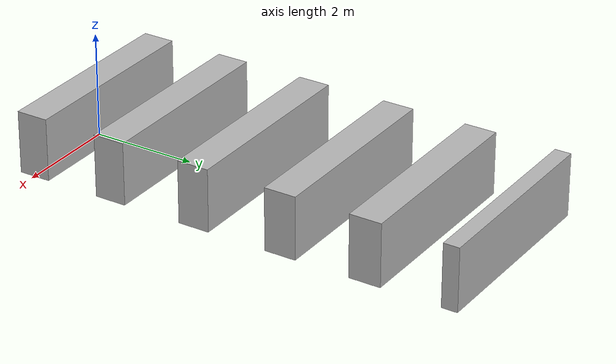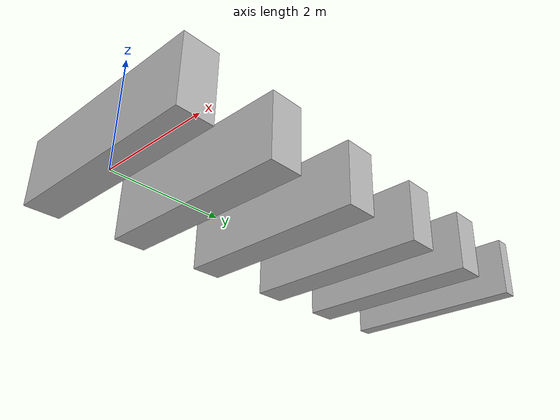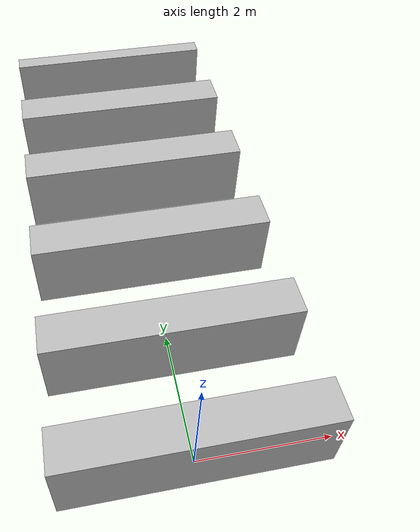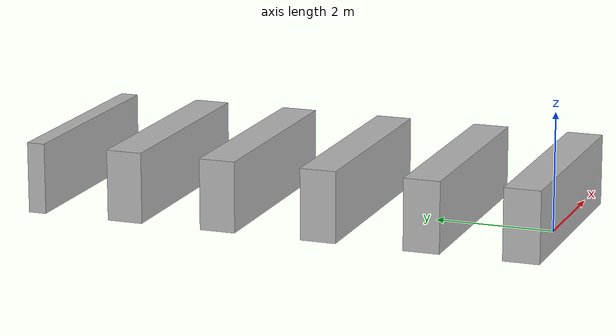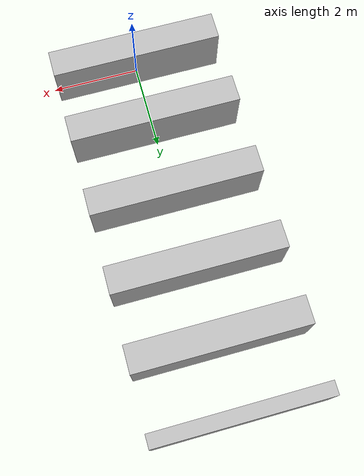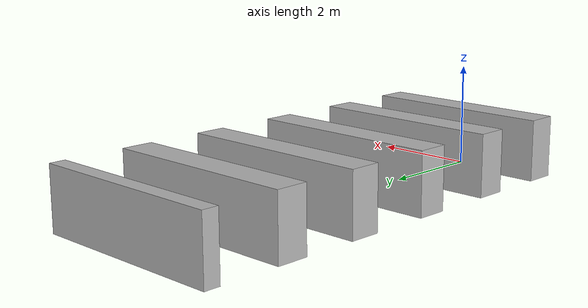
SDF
<?xml version="1.0" ?>
<sdf version="1.6">
  <model name="tue.library/journals">
    <link name="1">
      <collision name="1">
        <geometry>
          <box>
            <size>3.82 0.61 1.2</size>
          </box>
        </geometry>
        <name>1</name>
      </collision>
      <visual name="1">
        <geometry>
          <box>
            <size>3.82 0.61 1.2</size>
          </box>
        </geometry>
        <name>1</name>
      </visual>
      <pose>0 0 0.6 0 0 0</pose>
      <name>1</name>
    </link>
    <link name="2">
      <collision name="2">
        <geometry>
          <box>
            <size>3.82 0.61 1.2</size>
          </box>
        </geometry>
        <name>2</name>
      </collision>
      <visual name="2">
        <geometry>
          <box>
            <size>3.82 0.61 1.2</size>
          </box>
        </geometry>
        <name>2</name>
      </visual>
      <pose>0 1.65 0.6 0 0 0</pose>
      <name>2</name>
    </link>
    <link name="3">
      <collision name="3">
        <geometry>
          <box>
            <size>3.82 0.61 1.2</size>
          </box>
        </geometry>
        <name>3</name>
      </collision>
      <visual name="3">
        <geometry>
          <box>
            <size>3.82 0.61 1.2</size>
          </box>
        </geometry>
        <name>3</name>
      </visual>
      <pose>0 3.4 0.6 0 0 0</pose>
      <name>3</name>
    </link>
    <link name="4">
      <collision name="4">
        <geometry>
          <box>
            <size>3.82 0.61 1.2</size>
          </box>
        </geometry>
        <name>4</name>
      </collision>
      <visual name="4">
        <geometry>
          <box>
            <size>3.82 0.61 1.2</size>
          </box>
        </geometry>
        <name>4</name>
      </visual>
      <pose>0 5.15 0.6 0 0 0</pose>
      <name>4</name>
    </link>
    <link name="5">
      <collision name="5">
        <geometry>
          <box>
            <size>3.82 0.61 1.2</size>
          </box>
        </geometry>
        <name>5</name>
      </collision>
      <visual name="5">
        <geometry>
          <box>
            <size>3.82 0.61 1.2</size>
          </box>
        </geometry>
        <name>5</name>
      </visual>
      <pose>0 6.8 0.6 0 0 0</pose>
      <name>5</name>
    </link>
    <link name="6">
      <collision name="6">
        <geometry>
          <box>
            <size>3.82 0.305 1.2</size>
          </box>
        </geometry>
        <name>6</name>
      </collision>
      <visual name="6">
        <geometry>
          <box>
            <size>3.82 0.305 1.2</size>
          </box>
        </geometry>
        <name>6</name>
      </visual>
      <pose>0 8.4 0.6 0 0 0</pose>
      <name>6</name>
    </link>
    <static>true</static>
    <name>tue.library/journals</name>
  </model>
</sdf>
